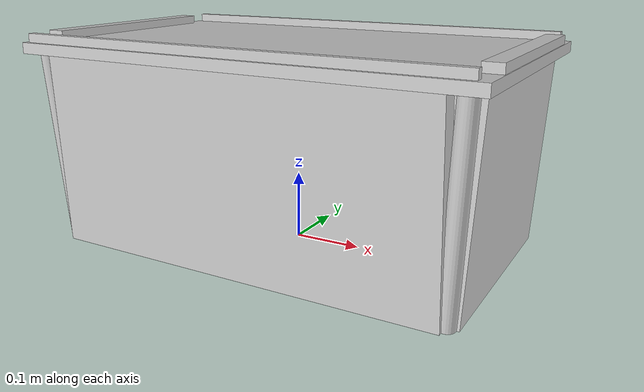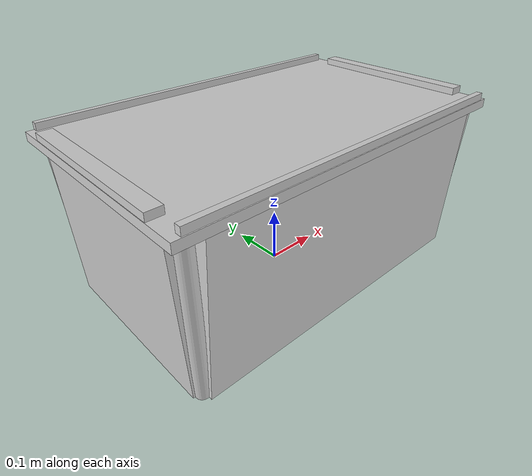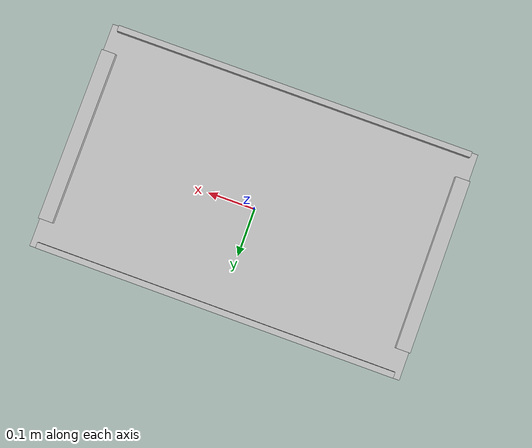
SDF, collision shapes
<?xml version="1.0" ?>
<sdf version="1.5">
  <model name="gray_tote">
    <link name="link">
      <inertial>
        <pose>0 0 0.141549545 0 0 0</pose>
        <mass>3.53802</mass>
        <inertia>
          <ixx>0.068835836</ixx>
          <ixy>0</ixy>
          <ixz>0</ixz>
          <iyy>0.139596236</iyy>
          <iyz>0</iyz>
          <izz>0.155908748</izz>
        </inertia>
      </inertial>

      <collision name="lid">
        <pose>0 0 0.28958 0 0 0</pose>
        <geometry>
          <box>
            <size>0.67768 0.41298 0.01588</size>
          </box>
        </geometry>
      </collision>

      <collision name="lid_lip_1">
        <pose>0 0.20063 0.3048 0 0 0</pose>
        <geometry>
          <box>
            <size>0.65068 0.0105 0.0127</size>
          </box>
        </geometry>
      </collision>

      <collision name="lid_lip_2">
        <pose>0 -0.20063 0.3048 0 0 0</pose>
        <geometry>
          <box>
            <size>0.65068 0.0105 0.0127</size>
          </box>
        </geometry>
      </collision>

      <collision name="lid_lip_3">
        <pose>0.32585 0 0.3048 0 0 0</pose>
        <geometry>
          <box>
            <size>0.02602 0.31202 0.0127</size>
          </box>
        </geometry>
      </collision>

      <collision name="lid_lip_4">
        <pose>-0.32585 0 0.3048 0 0 0</pose>
        <geometry>
          <box>
            <size>0.02602 0.31202 0.0127</size>
          </box>
        </geometry>
      </collision>

      <collision name="side_wall_1">
        <pose>0 -0.18 0.141549545 0.0611474431 0 0</pose>
        <geometry>
          <box>
            <size>0.58404 0.02602 0.28309909</size>
          </box>
        </geometry>
      </collision>

      <collision name="side_wall_2">
        <pose>0 0.18 0.141549545 -0.0611474431 0 0</pose>
        <geometry>
          <box>
            <size>0.58404 0.02602 0.28309909</size>
          </box>
        </geometry>
      </collision>

      <collision name="side_wall_3">
        <pose>0.305 0 0.141549545 0 0.0611474431 0</pose>
        <geometry>
          <box>
            <size>0.02602 0.33046 0.28309909</size>
          </box>
        </geometry>
      </collision>

      <collision name="side_wall_4">
        <pose>-0.305 0 0.141549545 0 -0.0611474431 0</pose>
        <geometry>
          <box>
            <size>0.02602 0.33046 0.28309909</size>
          </box>
        </geometry>
      </collision>

      <collision name="bottom">
        <pose>0 0 0.01 0 0 0</pose>
        <geometry>
          <box>
            <size>0.58404 0.33046 0.02</size>
          </box>
        </geometry>
      </collision>

      <collision name="corner_1">
        <pose>0.30202 -0.175 0.141549545 0.0611474431 0.0611474431 0</pose>
        <geometry>
          <cylinder>
            <radius>0.01268</radius>
            <length>0.28309909</length>
          </cylinder>
        </geometry>
      </collision>

      <collision name="corner_2">
        <pose>-0.30202 -0.175 0.141549545 0.0611474431 -0.0611474431 0</pose>
        <geometry>
          <cylinder>
            <radius>0.01268</radius>
            <length>0.28309909</length>
          </cylinder>
        </geometry>
      </collision>

      <collision name="corner_3">
        <pose>-0.30202 0.175 0.141549545 -0.0611474431 -0.0611474431 0</pose>
        <geometry>
          <cylinder>
            <radius>0.01268</radius>
            <length>0.28309909</length>
          </cylinder>
        </geometry>
      </collision>

      <collision name="corner_4">
        <pose>0.30202 0.175 0.141549545 -0.0611474431 0.0611474431 0</pose>
        <geometry>
          <cylinder>
            <radius>0.01268</radius>
            <length>0.28309909</length>
          </cylinder>
        </geometry>
      </collision>

      <visual name="visual">
        <geometry>
          <mesh>
            <scale>1 1 1</scale>
            <uri>model://grey_tote/meshes/tote.dae</uri>
          </mesh>
        </geometry>
        <material>
          <ambient>0.5 0.5 0.5 1</ambient>
          <diffuse>0.8 0.8 0.8 1</diffuse>
        </material>

      </visual>
    </link>
  </model>
</sdf>
